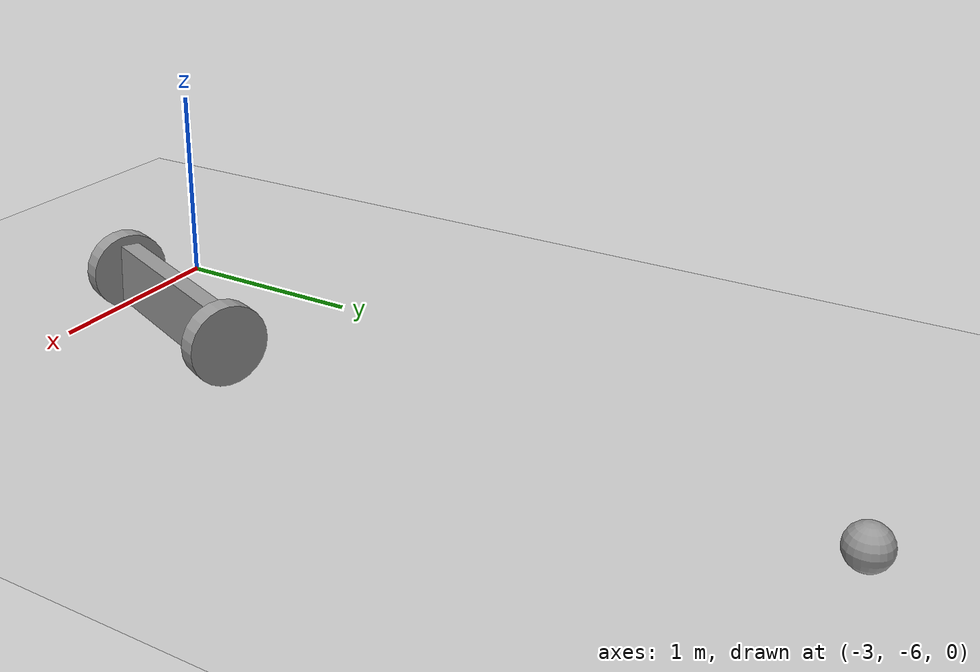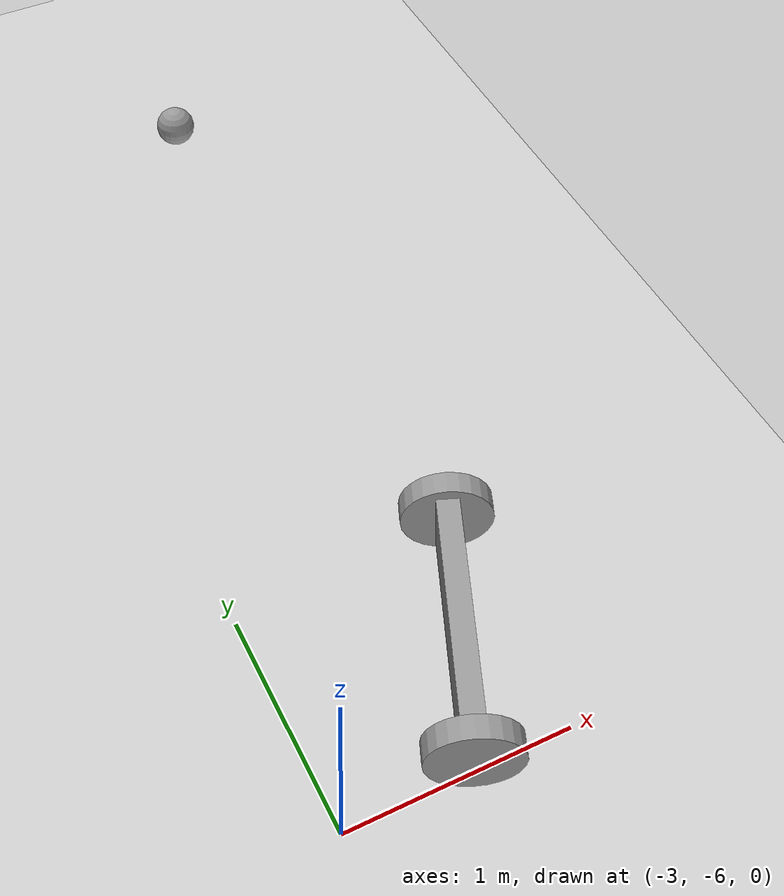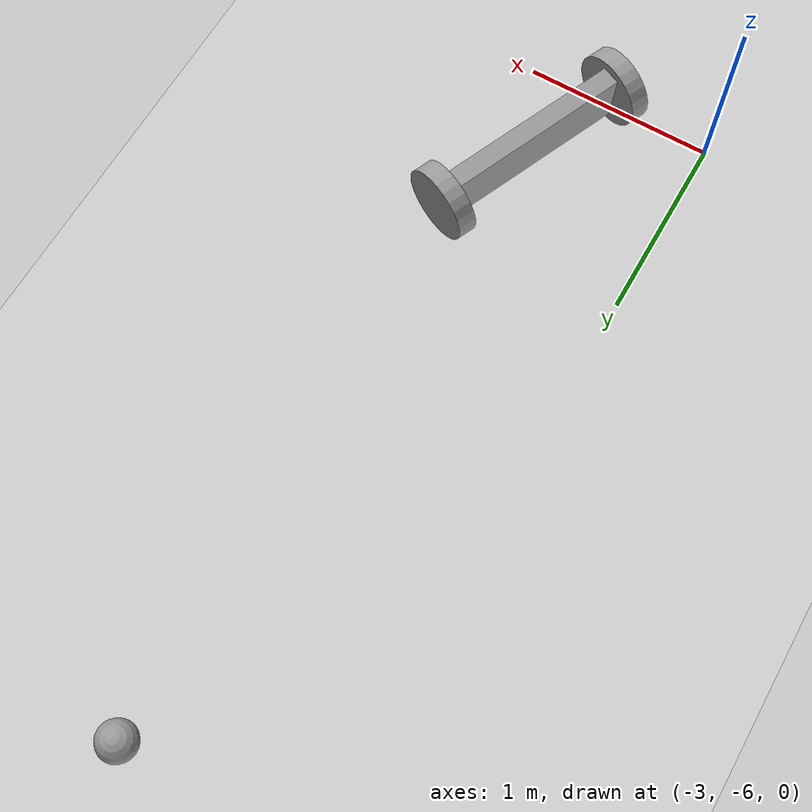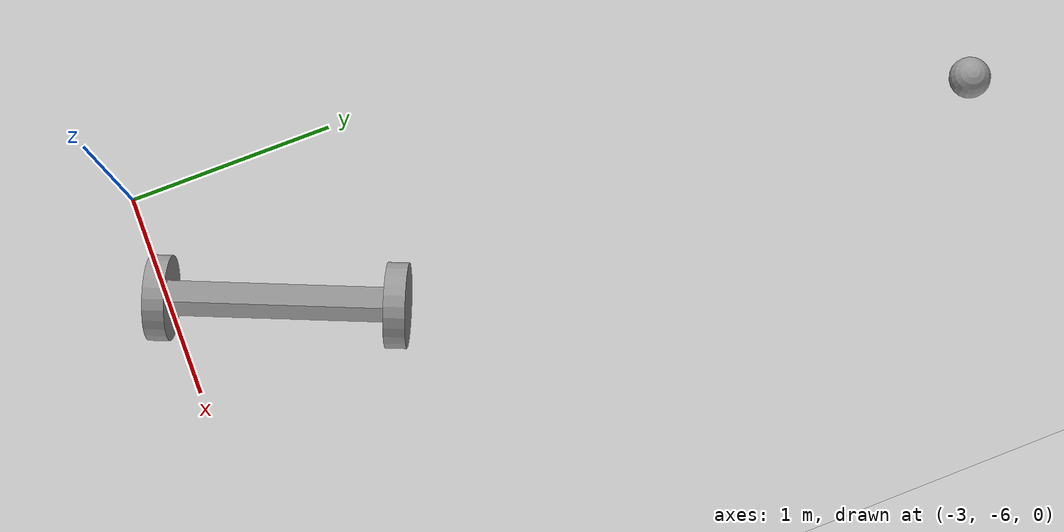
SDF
<sdf version="1.6">
 <world name="default">
  <model name="ground_plane">
   <static>1</static>
   <link name="link">
    <collision name="collision">
     <geometry><plane><normal>0 0 1</normal><size>100 100</size></plane></geometry>
     <surface>
      <contact><collide_bitmask>65535</collide_bitmask></contact>
      <friction><ode><mu>100</mu><mu2>50</mu2></ode></friction>
     </surface>
    </collision>
    <visual name="visual">
     <cast_shadows>0</cast_shadows>
     <geometry><plane><normal>0 0 1</normal><size>100 100</size></plane></geometry>
     <material>
      <script><uri>file://media/materials/scripts/gazebo.material</uri><name>Gazebo/Grey</name></script>
     </material>
    </visual>
   </link>
  </model>
  <model name="twowheelsrobotModel_clone_1">
   <link name="link_0">
    <pose>0 0 0.2 0 -0 0</pose>
    <inertial>
     <mass>1</mass>
     <inertia>
      <ixx>0.166667</ixx>
      <ixy>0</ixy>
      <ixz>0</ixz>
      <iyy>0.166667</iyy>
      <iyz>0</iyz>
      <izz>0.166667</izz>
     </inertia>
    </inertial>
    <visual name="visual">
     <geometry><box><size>0.3 1 0.1</size></box></geometry>
     <material>
      <lighting>1</lighting>
      <script><uri>file://media/materials/scripts/gazebo.material</uri><name>Gazebo/Grey</name></script>
      <shader type="pixel"><normal_map>__default__</normal_map></shader>
      <ambient>0.3 0.3 0.3 1</ambient>
      <diffuse>0.7 0.7 0.7 1</diffuse>
      <specular>0.01 0.01 0.01 1</specular>
      <emissive>0 0 0 1</emissive>
     </material>
    </visual>
    <collision name="collision">
     <geometry><box><size>0.3 1 0.1</size></box></geometry>
     <surface>
      <friction>
       <ode><mu>1</mu><mu2>1</mu2><fdir1>0 0 0</fdir1><slip1>0</slip1><slip2>0</slip2></ode>
       <torsional>
        <coefficient>1</coefficient>
        <patch_radius>0</patch_radius>
        <surface_radius>0</surface_radius>
        <use_patch_radius>1</use_patch_radius>
        <ode><slip>0</slip></ode>
       </torsional>
      </friction>
      <bounce><restitution_coefficient>0</restitution_coefficient><threshold>1e+06</threshold></bounce>
      <contact>
       <collide_without_contact>0</collide_without_contact>
       <collide_without_contact_bitmask>1</collide_without_contact_bitmask>
       <collide_bitmask>1</collide_bitmask>
       <ode>
        <soft_cfm>0</soft_cfm>
        <soft_erp>0.2</soft_erp>
        <kp>1e+13</kp>
        <kd>1</kd>
        <max_vel>0.01</max_vel>
        <min_depth>0</min_depth>
       </ode>
       <bullet>
        <split_impulse>1</split_impulse>
        <split_impulse_penetration_threshold>-0.01</split_impulse_penetration_threshold>
        <soft_cfm>0</soft_cfm>
        <soft_erp>0.2</soft_erp>
        <kp>1e+13</kp>
        <kd>1</kd>
       </bullet>
      </contact>
     </surface>
    </collision>
   </link>
   <link name="link_1">
    <pose>0 -0.550019 0.2 1.5707 -0 0</pose>
    <inertial>
     <mass>1</mass>
     <inertia><ixx>0.145833</ixx><ixy>0</ixy><ixz>0</ixz><iyy>0.145833</iyy><iyz>0</iyz><izz>0.125</izz></inertia>
    </inertial>
    <visual name="visual">
     <geometry><cylinder><radius>0.2</radius><length>0.1</length></cylinder></geometry>
     <material>
      <lighting>1</lighting>
      <script><uri>file://media/materials/scripts/gazebo.material</uri><name>Gazebo/Grey</name></script>
      <shader type="pixel"><normal_map>__default__</normal_map></shader>
      <ambient>0.3 0.3 0.3 1</ambient>
      <diffuse>0.7 0.7 0.7 1</diffuse>
      <specular>0.01 0.01 0.01 1</specular>
      <emissive>0 0 0 1</emissive>
     </material>
    </visual>
    <collision name="collision">
     <geometry><cylinder><radius>0.2</radius><length>0.1</length></cylinder></geometry>
     <surface>
      <friction>
       <ode><mu>1</mu><mu2>1</mu2><fdir1>0 0 0</fdir1><slip1>0</slip1><slip2>0</slip2></ode>
       <torsional>
        <coefficient>1</coefficient>
        <patch_radius>0</patch_radius>
        <surface_radius>0</surface_radius>
        <use_patch_radius>1</use_patch_radius>
        <ode><slip>0</slip></ode>
       </torsional>
      </friction>
      <bounce><restitution_coefficient>0</restitution_coefficient><threshold>1e+06</threshold></bounce>
      <contact>
       <collide_without_contact>0</collide_without_contact>
       <collide_without_contact_bitmask>1</collide_without_contact_bitmask>
       <collide_bitmask>1</collide_bitmask>
       <ode>
        <soft_cfm>0</soft_cfm>
        <soft_erp>0.2</soft_erp>
        <kp>1e+13</kp>
        <kd>1</kd>
        <max_vel>0.01</max_vel>
        <min_depth>0</min_depth>
       </ode>
       <bullet>
        <split_impulse>1</split_impulse>
        <split_impulse_penetration_threshold>-0.01</split_impulse_penetration_threshold>
        <soft_cfm>0</soft_cfm>
        <soft_erp>0.2</soft_erp>
        <kp>1e+13</kp>
        <kd>1</kd>
       </bullet>
      </contact>
     </surface>
    </collision>
   </link>
   <link name="link_1_clone">
    <pose>0 0.550019 0.2 1.5707 -0 0</pose>
    <inertial>
     <mass>1</mass>
     <inertia><ixx>0.145833</ixx><ixy>0</ixy><ixz>0</ixz><iyy>0.145833</iyy><iyz>0</iyz><izz>0.125</izz></inertia>
    </inertial>
    <visual name="visual">
     <geometry><cylinder><radius>0.2</radius><length>0.1</length></cylinder></geometry>
     <material>
      <lighting>1</lighting>
      <script><uri>file://media/materials/scripts/gazebo.material</uri><name>Gazebo/Grey</name></script>
      <shader type="pixel"><normal_map>__default__</normal_map></shader>
      <ambient>0.3 0.3 0.3 1</ambient>
      <diffuse>0.7 0.7 0.7 1</diffuse>
      <specular>0.01 0.01 0.01 1</specular>
      <emissive>0 0 0 1</emissive>
     </material>
    </visual>
    <collision name="collision">
     <geometry><cylinder><radius>0.2</radius><length>0.1</length></cylinder></geometry>
     <surface>
      <friction>
       <ode><mu>1</mu><mu2>1</mu2><fdir1>0 0 0</fdir1><slip1>0</slip1><slip2>0</slip2></ode>
       <torsional>
        <coefficient>1</coefficient>
        <patch_radius>0</patch_radius>
        <surface_radius>0</surface_radius>
        <use_patch_radius>1</use_patch_radius>
        <ode><slip>0</slip></ode>
       </torsional>
      </friction>
      <bounce><restitution_coefficient>0</restitution_coefficient><threshold>1e+06</threshold></bounce>
      <contact>
       <collide_without_contact>0</collide_without_contact>
       <collide_without_contact_bitmask>1</collide_without_contact_bitmask>
       <collide_bitmask>1</collide_bitmask>
       <ode>
        <soft_cfm>0</soft_cfm>
        <soft_erp>0.2</soft_erp>
        <kp>1e+13</kp>
        <kd>1</kd>
        <max_vel>0.01</max_vel>
        <min_depth>0</min_depth>
       </ode>
       <bullet>
        <split_impulse>1</split_impulse>
        <split_impulse_penetration_threshold>-0.01</split_impulse_penetration_threshold>
        <soft_cfm>0</soft_cfm>
        <soft_erp>0.2</soft_erp>
        <kp>1e+13</kp>
        <kd>1</kd>
       </bullet>
      </contact>
     </surface>
    </collision>
   </link>
   <joint name="link_0_JOINT_0" type="revolute">
    <parent>link_0</parent>
    <child>link_1</child>
    <axis>
     <xyz>0 0 1</xyz>
     <limit>
      <lower>-1.79769e+308</lower>
      <upper>1.79769e+308</upper>
      <effort>-1</effort>
      <velocity>-1</velocity>
     </limit>
     <dynamics>
      <spring_reference>0</spring_reference>
      <spring_stiffness>0</spring_stiffness>
      <damping>0</damping>
     </dynamics>
     <use_parent_model_frame>0</use_parent_model_frame>
    </axis>
    <physics>
     <ode><limit><cfm>0</cfm><erp>0.2</erp></limit><suspension><cfm>0</cfm><erp>0.2</erp></suspension></ode>
    </physics>
   </joint>
   <joint name="link_0_JOINT_1" type="revolute">
    <parent>link_0</parent>
    <child>link_1_clone</child>
    <axis>
     <xyz>0 0 1</xyz>
     <limit>
      <lower>-1.79769e+308</lower>
      <upper>1.79769e+308</upper>
      <effort>-1</effort>
      <velocity>-1</velocity>
     </limit>
     <dynamics>
      <spring_reference>0</spring_reference>
      <spring_stiffness>0</spring_stiffness>
      <damping>0</damping>
     </dynamics>
     <use_parent_model_frame>0</use_parent_model_frame>
    </axis>
    <physics>
     <ode><limit><cfm>0</cfm><erp>0.2</erp></limit><suspension><cfm>0</cfm><erp>0.2</erp></suspension></ode>
    </physics>
   </joint>
   <static>0</static>
   <pose>-2.41855 -5.41619 0.19108 0 -1.52618 2.73889</pose>
  </model>
  <model name="my_ball">
   <link name="link">
    <inertial>
     <mass>1</mass>
     <inertia><ixx>0.1</ixx><ixy>0</ixy><ixz>0</ixz><iyy>0.1</iyy><iyz>0</iyz><izz>0.1</izz></inertia>
    </inertial>
    <visual name="visual">
     <geometry><sphere><radius>0.1</radius></sphere></geometry>
     <material>
      <script><name>Gazebo/Grey</name><uri>file://media/materials/scripts/gazebo.material</uri></script>
      <ambient>1 1 1 1</ambient>
      <diffuse>1 1 1 1</diffuse>
      <specular>1 1 1 1</specular>
      <emissive>0 0 0 1</emissive>
      <shader type="vertex"><normal_map>__default__</normal_map></shader>
     </material>
    </visual>
    <collision name="collision">
     <geometry><sphere><radius>0.1</radius></sphere></geometry>
     <surface>
      <friction>
       <ode><mu>1</mu><mu2>1</mu2><fdir1>0 0 0</fdir1><slip1>0</slip1><slip2>0</slip2></ode>
       <torsional>
        <coefficient>1</coefficient>
        <patch_radius>0</patch_radius>
        <surface_radius>0</surface_radius>
        <use_patch_radius>1</use_patch_radius>
        <ode><slip>0</slip></ode>
       </torsional>
      </friction>
      <bounce><restitution_coefficient>0</restitution_coefficient><threshold>1e+06</threshold></bounce>
      <contact>
       <collide_without_contact>0</collide_without_contact>
       <collide_without_contact_bitmask>1</collide_without_contact_bitmask>
       <collide_bitmask>1</collide_bitmask>
       <ode>
        <soft_cfm>0</soft_cfm>
        <soft_erp>0.2</soft_erp>
        <kp>1e+13</kp>
        <kd>1</kd>
        <max_vel>0.01</max_vel>
        <min_depth>0</min_depth>
       </ode>
       <bullet>
        <split_impulse>1</split_impulse>
        <split_impulse_penetration_threshold>-0.01</split_impulse_penetration_threshold>
        <soft_cfm>0</soft_cfm>
        <soft_erp>0.2</soft_erp>
        <kp>1e+13</kp>
        <kd>1</kd>
       </bullet>
      </contact>
     </surface>
    </collision>
   </link>
   <static>0</static>
   <pose>-2.0877 -2.03905 0.1 0 -0 0</pose>
  </model>
 </world>
</sdf>
